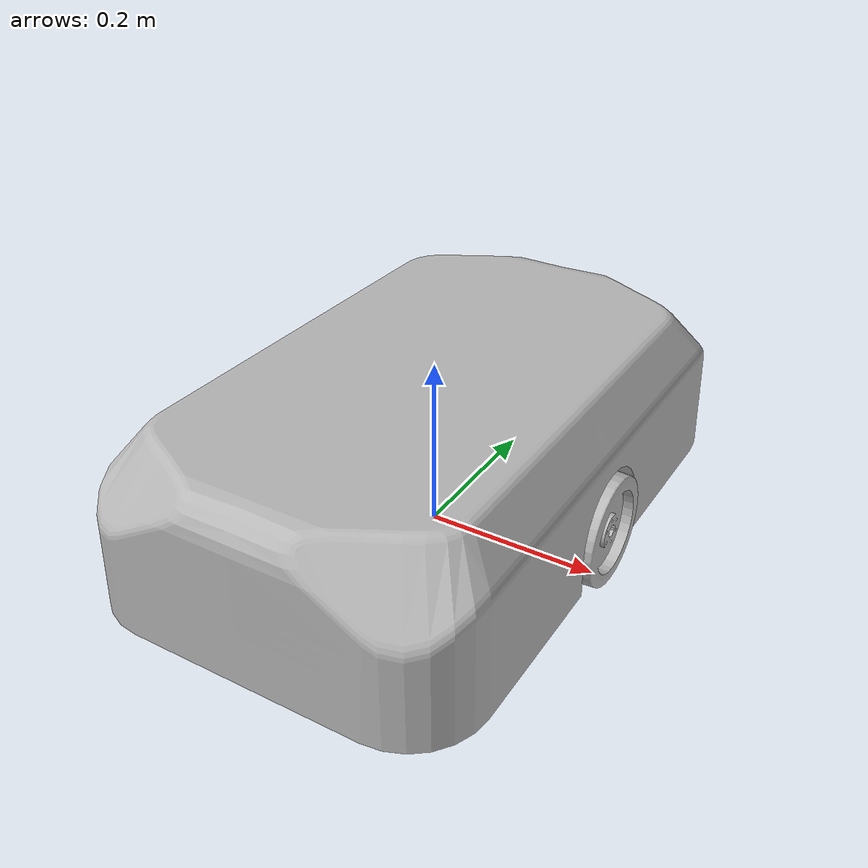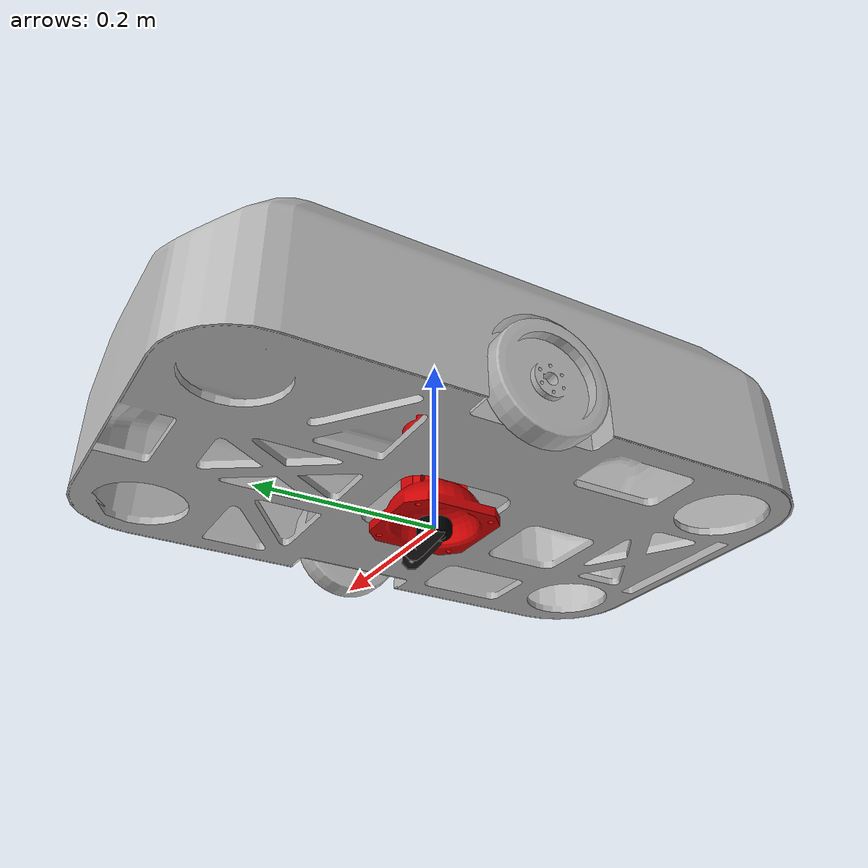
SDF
<?xml version="1.0"?>
<sdf version="1.10">
<model name="amr100">

  <link name="Body_link">
    <inertial>
      <inertia>
        <ixx>1.21129</ixx>
        <ixy>-0.00014</ixy>
        <ixz>0.00051</ixz>
        <iyy>0.51918</iyy>
        <iyz>-0.00435</iyz>
        <izz>1.52135</izz>
      </inertia>
      <pose>-0.00034 0.00016 0.07460 0 0 0</pose>
      <mass>30.00000</mass>
    </inertial>

    <visual name="Body">
      <pose>0 0 0.021993 0 0 0</pose>
      <geometry>
        <mesh>
          <uri>file://model/meshes/body.obj</uri>
          <scale>1 1 1</scale>
        </mesh>
      </geometry>
    </visual>

    <collision name="Body_collision">
      <pose>0 0 0.021993 0 0 0</pose>
      <geometry>
        <mesh>
          <uri>file://model/meshes/body.obj</uri>
          <scale>1 1 1</scale>
        </mesh>
      </geometry>
      <surface>
        <contact/>
      </surface>
    </collision>
  </link>

  <link name="Drive_wheel_L_link">
    <inertial>
      <inertia>
        <ixx>0.00220</ixx>
        <ixy>0.00000</ixy>
        <ixz>-0.00000</ixz>
        <iyy>0.00117</iyy>
        <iyz>-0.00000</iyz>
        <izz>0.00117</izz>
      </inertia>
      <pose>0 0 0 0 0 0</pose>
      <mass>1.20000</mass>
    </inertial>

    <visual name="Drive_wheel_L">
      <pose>0.2075 0.001 0.062 0 1.5708 0</pose>
      <geometry>
        <mesh>
          <uri>file://model/meshes/drive_wheel.obj</uri>
          <scale>1 1 1</scale>
        </mesh>
      </geometry>
    </visual>

    <collision name="Drive_wheel_L_collision">
      <pose>0.2075 0.001 0.062 0 1.5708 0</pose>
      <geometry>
        <cylinder>
          <radius>0.06250</radius>
          <length>0.03000</length>
        </cylinder>
      </geometry>
      <surface>
        <contact/>
      </surface>
    </collision>
  </link>

  <link name="Drive_wheel_R_link">
    <inertial>
      <inertia>
        <ixx>0.00220</ixx>
        <ixy>0.00000</ixy>
        <ixz>-0.00000</ixz>
        <iyy>0.00117</iyy>
        <iyz>-0.00000</iyz>
        <izz>0.00117</izz>
      </inertia>
      <pose>0 0 0 0 0 0</pose>
      <mass>1.20000</mass>
    </inertial>

    <visual name="Drive_wheel_R">
      <pose>-0.2075 0.001 0.062 0 -1.5708 0</pose>
      <geometry>
        <mesh>
          <uri>file://model/meshes/drive_wheel.obj</uri>
          <scale>1 1 1</scale>
        </mesh>
      </geometry>
    </visual>

    <collision name="Drive_wheel_R_collision">
      <pose>-0.2075 0.001 0.062 0 -1.5708 0</pose>
      <geometry>
        <cylinder>
          <radius>0.06250</radius>
          <length>0.03000</length>
        </cylinder>
      </geometry>
      <surface>
        <contact/>
      </surface>
    </collision>
  </link>

  <link name="Suspension_cup_link">
    <collision name="Suspension_cup_collision">
      <pose>0.00000 -0.00000 -0.00000 0.00000 0.00000 0.00000</pose>
      <geometry>
        <mesh>
          <uri>../meshes/obj/Suspension_cup.obj</uri>
          <scale>1.00000 1.00000 1.00000</scale>
        </mesh>
      </geometry>
      <surface>
        <contact/>
      </surface>
    </collision>
    <inertial>
      <inertia>
        <ixx>0.00180</ixx>
        <ixy>-0.00000</ixy>
        <ixz>0.00000</ixz>
        <iyy>0.00180</iyy>
        <iyz>-0.00000</iyz>
        <izz>0.00091</izz>
      </inertia>
      <pose>0.00000 -0.00000 0.05155 0.00000 0.00000 0.00000</pose>
      <mass>0.80000</mass>
    </inertial>
    <visual name="Suspension_cup">
      <material>
        <diffuse>0.80000 0.00784 0.01176 1.00000</diffuse>
        <specular>0.80000 0.00784 0.01176 1.00000</specular>
        <emissive>1.00000 1.00000 1.00000 1.00000</emissive>
      </material>
      <pose>0.00000 -0.00000 -0.00000 0.00000 0.00000 0.00000</pose>
      <geometry>
        <mesh>
          <uri>../meshes/obj/Suspension_cup.obj</uri>
          <scale>1.00000 1.00000 1.00000</scale>
        </mesh>
      </geometry>
    </visual>
  </link>

  <link name="Caster_axis_link">
    <collision name="Caster_axis_collision">
      <pose>0.00000 0.00000 0.00000 0.00000 0.00000 0.00000</pose>
      <geometry>
        <mesh>
          <uri>../meshes/obj/Caster_axis.obj</uri>
          <scale>1.00000 1.00000 1.00000</scale>
        </mesh>
      </geometry>
      <surface>
        <contact/>
      </surface>
    </collision>
    <inertial>
      <inertia>
        <ixx>0.00008</ixx>
        <ixy>-0.00000</ixy>
        <ixz>0.00000</ixz>
        <iyy>0.00008</iyy>
        <iyz>0.00000</iyz>
        <izz>0.00000</izz>
      </inertia>
      <pose>0.00001 0.00001 0.03732 0.00000 0.00000 0.00000</pose>
      <mass>0.10000</mass>
    </inertial>
    <visual name="Caster_axis">
      <material>
        <diffuse>0.04314 0.03137 0.03529 1.00000</diffuse>
        <specular>0.04314 0.03137 0.03529 1.00000</specular>
        <emissive>1.00000 1.00000 1.00000 1.00000</emissive>
      </material>
      <pose>0.00000 0.00000 0.00000 0.00000 0.00000 0.00000</pose>
      <geometry>
        <mesh>
          <uri>../meshes/obj/Caster_axis.obj</uri>
          <scale>1.00000 1.00000 1.00000</scale>
        </mesh>
      </geometry>
    </visual>
  </link>

  <link name="Caster_bar_link">
    <collision name="Caster_bar_collision">
      <pose>-0.00000 -0.00000 0.00000 1.57080 1.15257 1.15257</pose>
      <geometry>
        <mesh>
          <uri>../meshes/obj/Caster_bar.obj</uri>
          <scale>1.00000 1.00000 1.00000</scale>
        </mesh>
      </geometry>
      <surface>
        <contact/>
      </surface>
    </collision>
    <inertial>
      <inertia>
        <ixx>0.00001</ixx>
        <ixy>0.00000</ixy>
        <ixz>-0.00000</ixz>
        <iyy>0.00001</iyy>
        <iyz>0.00000</iyz>
        <izz>0.00001</izz>
      </inertia>
      <pose>0.00330 0.00742 -0.01433 0.00000 0.00000 0.00000</pose>
      <mass>0.05000</mass>
    </inertial>
    <visual name="Caster_bar">
      <material>
        <diffuse>0.04314 0.03137 0.03529 1.00000</diffuse>
        <specular>0.04314 0.03137 0.03529 1.00000</specular>
        <emissive>1.00000 1.00000 1.00000 1.00000</emissive>
      </material>
      <pose>-0.00000 -0.00000 0.00000 1.57080 1.15257 1.15257</pose>
      <geometry>
        <mesh>
          <uri>../meshes/obj/Caster_bar.obj</uri>
          <scale>1.00000 1.00000 1.00000</scale>
        </mesh>
      </geometry>
    </visual>
  </link>

  <link name="Caster_wheel_link">
    <collision name="Caster_wheel_collision">
      <pose>-0.00000 0.00000 -0.00000 -0.00000 0.00000 0.00000</pose>
      <geometry>
        <cylinder>
          <radius>0.01900</radius>
          <length>0.02107</length>
        </cylinder>
      </geometry>
      <surface>
        <contact/>
      </surface>
    </collision>
    <inertial>
      <inertia>
        <ixx>0.00001</ixx>
        <ixy>-0.00000</ixy>
        <ixz>0.00000</ixz>
        <iyy>0.00001</iyy>
        <iyz>-0.00000</iyz>
        <izz>0.00001</izz>
      </inertia>
      <pose>-0.00000 -0.00000 -0.00000 0.00000 0.00000 0.00000</pose>
      <mass>0.05000</mass>
    </inertial>
    <visual name="Caster_wheel">
      <material>
        <diffuse>0.00000 0.00000 0.00000 1.00000</diffuse>
        <specular>0.00000 0.00000 0.00000 1.00000</specular>
        <emissive>1.00000 1.00000 1.00000 1.00000</emissive>
      </material>
      <pose>-0.00000 -0.00000 -0.00000 -0.00000 -0.00000 0.00000</pose>
      <geometry>
        <mesh>
          <uri>../meshes/obj/Caster_wheel.obj</uri>
          <scale>1.00000 1.00000 0.99999</scale>
        </mesh>
      </geometry>
    </visual>
  </link>

  <!-- JOINTS -->

  <joint name="Drive_wheel_L_link_joint" type="continuous">
    <pose>0.2075 0.001 0.062 0 1.5708 0</pose>
    <parent>Body_link</parent>
    <child>Drive_wheel_L_link</child>
    <axis>
      <limit>
        <effort>150.00000</effort>
        <velocity>0.00000</velocity>
      </limit>
      <xyz>0 0 1</xyz>
    </axis>
    <axis2/>
  </joint>

  <joint name="Drive_wheel_R_link_joint" type="continuous">
    <pose>-0.2075 0.001 0.062 0 -1.5708 0</pose>
    <parent>Body_link</parent>
    <child>Drive_wheel_R_link</child>
    <axis>
      <limit>
        <effort>150.00000</effort>
        <velocity>0.00000</velocity>
      </limit>
      <xyz>0 0 1</xyz>
    </axis>
    <axis2/>
  </joint>

  <joint name="Suspension_cup_link_joint" type="fixed">
    <pose>-0.13850 -0.27071 0.00800 0.00000 0.00000 0.00000</pose>
    <parent>Body_link</parent>
    <child>Suspension_cup_link</child>
    <axis/>
    <axis2/>
  </joint>

  <joint name="Caster_axis_link_joint" type="prismatic">
    <pose>0.00000 0.00000 -0.00000 0.00000 0.00000 0.00000</pose>
    <parent>Suspension_cup_link</parent>
    <child>Caster_axis_link</child>
    <axis>
      <dynamics>
        <damping>5.00000</damping>
        <spring_stiffness>4000.00000</spring_stiffness>
      </dynamics>
      <limit>
        <lower>0.00000</lower>
        <upper>0.02300</upper>
        <effort>150.00000</effort>
        <velocity>0.00000</velocity>
      </limit>
      <xyz>0.00000 0.00000 1.00000</xyz>
    </axis>
    <axis2>
      <dynamics>
        <damping>5.00000</damping>
        <spring_stiffness>4000.00000</spring_stiffness>
      </dynamics>
    </axis2>
  </joint>

  <joint name="Caster_bar_link_joint" type="continuous">
    <pose>0.00000 -0.00000 -0.00000 -0.00000 -0.00000 0.41823</pose>
    <parent>Caster_axis_link</parent>
    <child>Caster_bar_link</child>
    <axis>
      <limit>
        <effort>0.00000</effort>
        <velocity>0.00000</velocity>
      </limit>
      <xyz>0.00000 0.00000 1.00000</xyz>
    </axis>
    <axis2/>
  </joint>

  <joint name="Caster_wheel_link_joint" type="continuous">
    <pose>0.00897 0.02018 -0.03099 0.41823 1.57080 0.00000</pose>
    <parent>Caster_bar_link</parent>
    <child>Caster_wheel_link</child>
    <axis>
      <limit>
        <effort>150.00000</effort>
        <velocity>0.00000</velocity>
      </limit>
      <xyz>0.00000 0.00000 1.00000</xyz>
    </axis>
    <axis2/>
  </joint>

</model>
</sdf>
